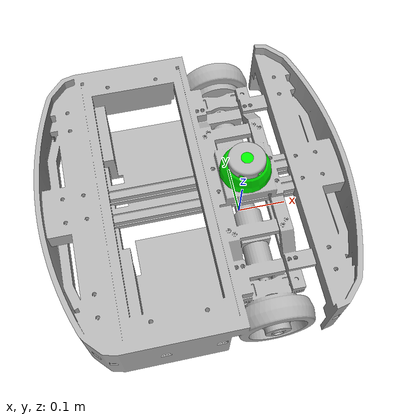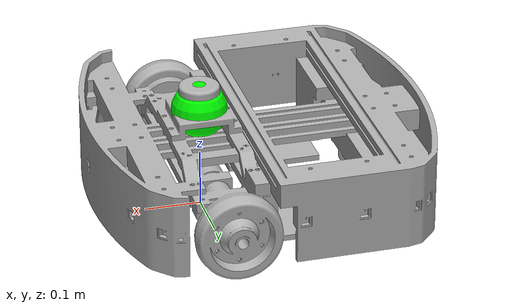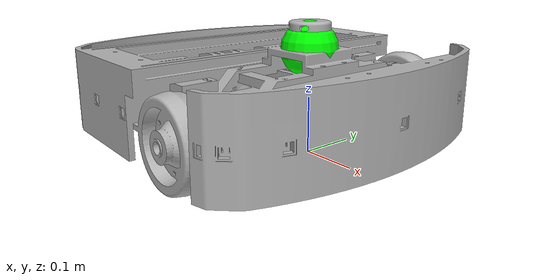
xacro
<?xml version="1.0" ?>
<robot name="comobot" xmlns:xacro="http://www.ros.org/wiki/xacro">

<xacro:include filename="$(find como_urdf)/urdf/materials.xacro" />

<link name="base_link">
  <inertial>
    <origin xyz="-0.11116681296334317 2.4438031969407686e-07 0.10795957199598556" rpy="0 0 0"/>
    <mass value="13.634730617679848"/>
    <inertia ixx="0.475183" iyy="0.438473" izz="0.868845" ixy="-0.000109" iyz="-0.0" ixz="0.003459"/>
  </inertial>
  <visual>
    <origin xyz="0 0 0" rpy="0 0 0"/>
    <geometry>
      <mesh filename="package://como_urdf/meshes/base_link.stl" scale="0.001 0.001 0.001"/>
    </geometry>
    <material name="silver"/>
  </visual>
  <collision>
    <origin xyz="0 0 0" rpy="0 0 0"/>
    <geometry>
      <mesh filename="package://como_urdf/meshes/base_link.stl" scale="0.001 0.001 0.001"/>
    </geometry>
  </collision>
</link>

<link name="base_scan">
  <inertial>
    <origin xyz="-0.00012003535987023445 0.0005134412924180124 0.022186860841184652" rpy="0 0 0"/>
    <mass value="0.18368341137526367"/>
    <inertia ixx="9.4e-05" iyy="9.3e-05" izz="0.000122" ixy="-0.0" iyz="-1e-06" ixz="0.0"/>
  </inertial>
  <visual>
    <origin xyz="0.0 -0.0 -0.187147" rpy="0 0 0"/>
    <geometry>
      <mesh filename="package://como_urdf/meshes/laser_scan.stl" scale="0.001 0.001 0.001"/>
    </geometry>
    <material name="silver"/>
  </visual>
  <collision>
    <origin xyz="0.0 -0.0 -0.187147" rpy="0 0 0"/>s
    <geometry>
      <mesh filename="package://como_urdf/meshes/laser_scan.stl" scale="0.001 0.001 0.001"/>
    </geometry>
  </collision>
</link>

  <link name="imu_link">
    <visual>
      <origin rpy="0 0 0" xyz="0 0 0.085"/>
      <geometry>
        <sphere radius="0.05"/>
      </geometry>
      <material name="green">
            <color rgba="0 1 0 1"/>
      </material>
    </visual>
  </link>

  <!--Need to change below if LiDAR scan has difference-->
  <joint name="joint1" type="fixed">
    <!--yaw(Z direction) -60degree roataion-->> <!--Z direction 0.187147 translation-->>
    <origin xyz="0.0 0.0 0.187147" rpy="0 0 0"/>
    <parent link="base_link"/>
    <child link="base_scan"/>
  </joint>

  <joint name="joint2" type="fixed">
    <origin rpy="0 0 0" xyz="0.0 0.0 0.1"/>
    <parent link="base_link"/>
    <child link="imu_link"/>
  </joint>

<!-- ToF -->

</robot>

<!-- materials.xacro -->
<robot name="comobot" xmlns:xacro="http://www.ros.org/wiki/xacro" >

<material name="silver">
  <color rgba="0.700 0.700 0.700 1.000"/>
</material>

</robot>
